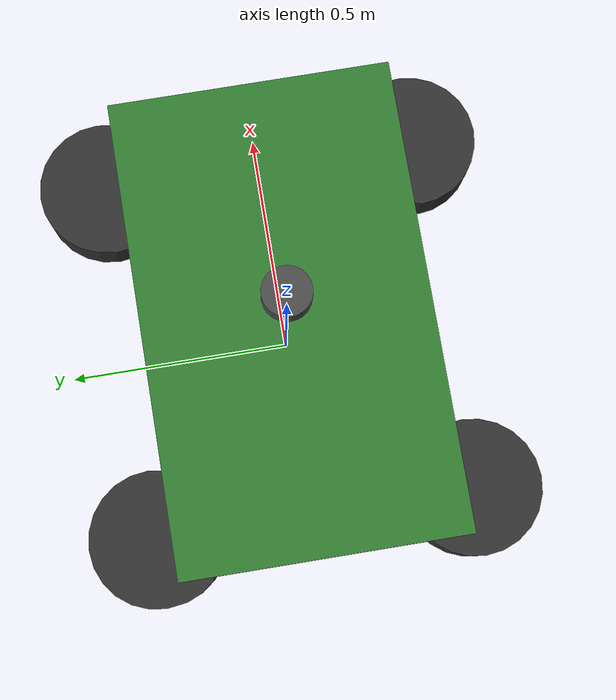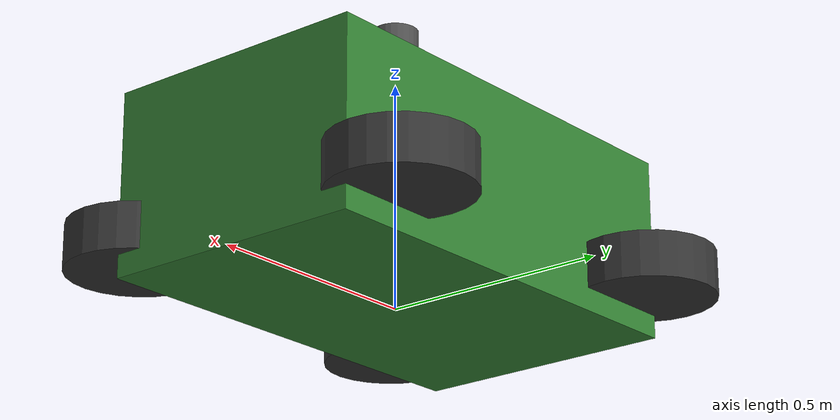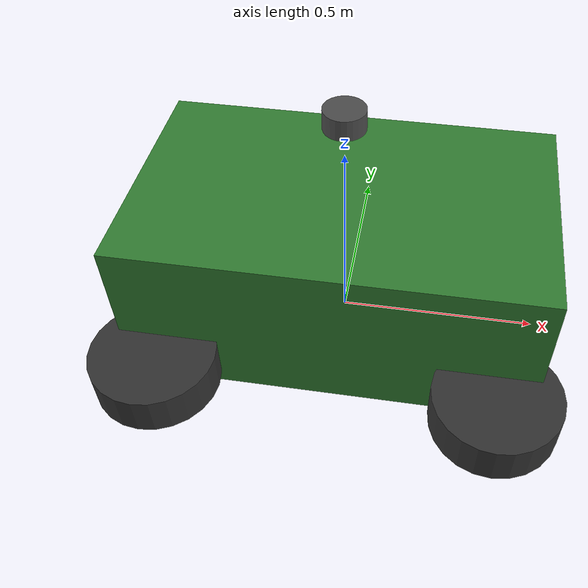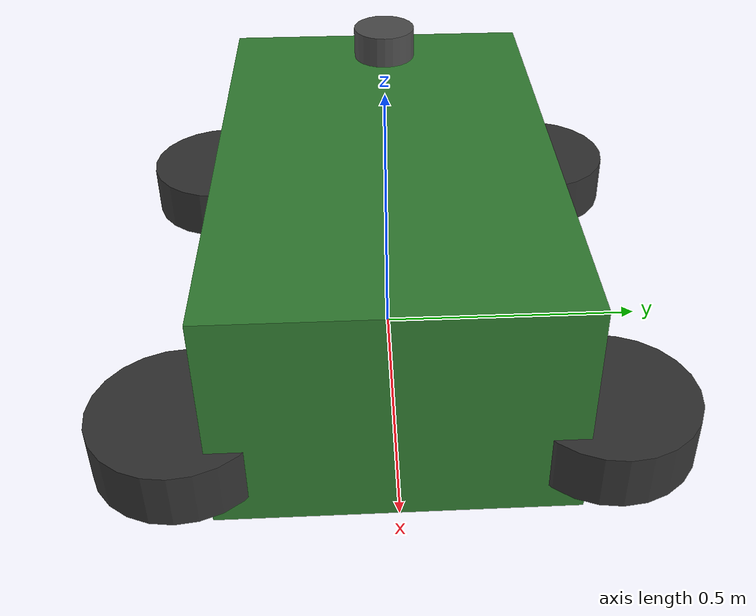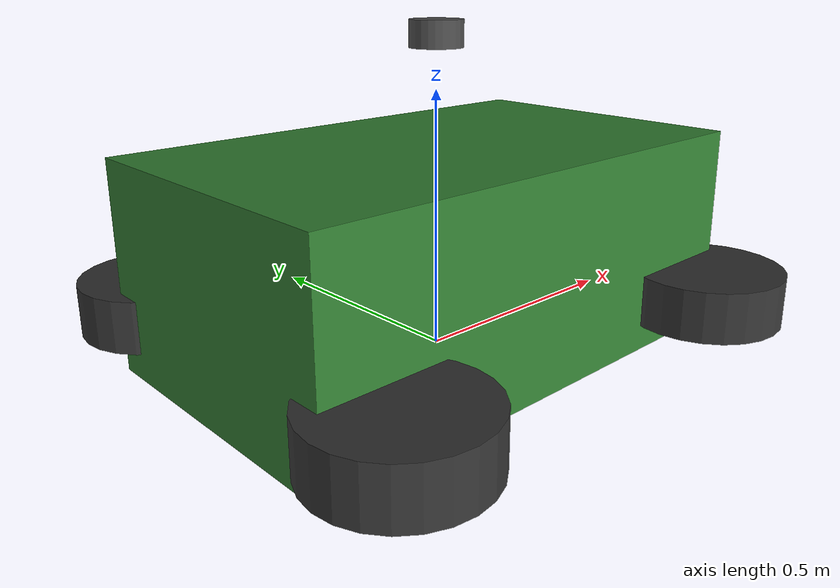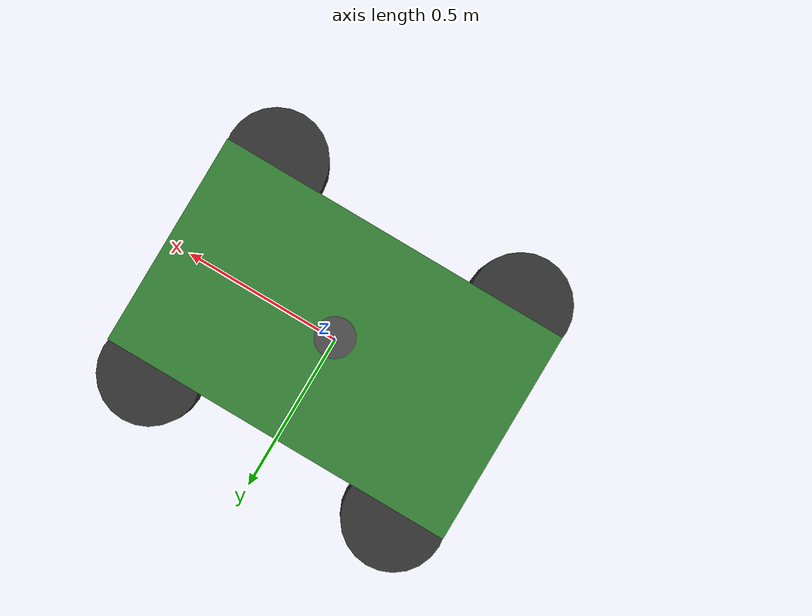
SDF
<?xml version="1.0"?>
<sdf version="1.8">
  <model name="ugv_chassis">

    <pose>0 0 0.2 0 0 0</pose>

    <!-- 车身 -->
    <link name="chassis">
      <inertial>
        <mass>25.0</mass>
        <inertia>
          <ixx>1.0</ixx>
          <ixy>0.0</ixy>
          <ixz>0.0</ixz>
          <iyy>1.5</iyy>
          <iyz>0.0</iyz>
          <izz>2.0</izz>
        </inertia>
      </inertial>

      <collision name="chassis_collision">
        <geometry>
          <box>
            <size>1.0 0.6 0.4</size>
          </box>
        </geometry>
      </collision>

      <visual name="chassis_visual">
        <geometry>
          <box>
            <size>1.0 0.6 0.4</size>
          </box>
        </geometry>
        <material>
          <ambient>0.1 0.3 0.1</ambient>
          <diffuse>0.2 0.5 0.2</diffuse>
          <specular>0.1 0.1 0.1</specular>
        </material>
      </visual>

      <!-- IMU 传感器 -->
      <sensor name="imu_sensor" type="imu">
        <always_on>true</always_on>
        <update_rate>100</update_rate>
        <imu>
          <angular_velocity>
            <x><noise type="GAUSSIAN"><mean>0</mean><stddev>0.001</stddev></noise></x>
            <y><noise type="GAUSSIAN"><mean>0</mean><stddev>0.001</stddev></noise></y>
            <z><noise type="GAUSSIAN"><mean>0</mean><stddev>0.001</stddev></noise></z>
          </angular_velocity>
          <linear_acceleration>
            <x><noise type="GAUSSIAN"><mean>0</mean><stddev>0.01</stddev></noise></x>
            <y><noise type="GAUSSIAN"><mean>0</mean><stddev>0.01</stddev></noise></y>
            <z><noise type="GAUSSIAN"><mean>0</mean><stddev>0.01</stddev></noise></z>
          </linear_acceleration>
        </imu>
      </sensor>
    </link>

    <!-- 左前轮 -->
    <link name="wheel_fl">
      <pose>0.4 0.35 -0.1 0 0 0</pose>
      <inertial>
        <mass>1.5</mass>
        <inertia>
          <ixx>0.01</ixx><ixy>0</ixy><ixz>0</ixz>
          <iyy>0.01</iyy><iyz>0</iyz>
          <izz>0.02</izz>
        </inertia>
      </inertial>
      <collision name="wheel_fl_collision">
        <geometry>
          <cylinder>
            <radius>0.15</radius>
            <length>0.1</length>
          </cylinder>
        </geometry>
      </collision>
      <visual name="wheel_fl_visual">
        <geometry>
          <cylinder>
            <radius>0.15</radius>
            <length>0.1</length>
          </cylinder>
        </geometry>
        <material>
          <ambient>0.1 0.1 0.1</ambient>
          <diffuse>0.2 0.2 0.2</diffuse>
        </material>
      </visual>
    </link>

    <!-- 左前轮关节 (旋转) -->
    <joint name="wheel_fl_joint" type="revolute">
      <parent>chassis</parent>
      <child>wheel_fl</child>
      <axis>
        <xyz>0 1 0</xyz>
      </axis>
    </joint>

    <!-- 右前轮 -->
    <link name="wheel_fr">
      <pose>0.4 -0.35 -0.1 0 0 0</pose>
      <inertial>
        <mass>1.5</mass>
        <inertia>
          <ixx>0.01</ixx><ixy>0</ixy><ixz>0</ixz>
          <iyy>0.01</iyy><iyz>0</iyz>
          <izz>0.02</izz>
        </inertia>
      </inertial>
      <collision name="wheel_fr_collision">
        <geometry>
          <cylinder>
            <radius>0.15</radius>
            <length>0.1</length>
          </cylinder>
        </geometry>
      </collision>
      <visual name="wheel_fr_visual">
        <geometry>
          <cylinder>
            <radius>0.15</radius>
            <length>0.1</length>
          </cylinder>
        </geometry>
        <material>
          <ambient>0.1 0.1 0.1</ambient>
          <diffuse>0.2 0.2 0.2</diffuse>
        </material>
      </visual>
    </link>

    <joint name="wheel_fr_joint" type="revolute">
      <parent>chassis</parent>
      <child>wheel_fr</child>
      <axis>
        <xyz>0 1 0</xyz>
      </axis>
    </joint>

    <!-- 左后轮 -->
    <link name="wheel_rl">
      <pose>-0.4 0.35 -0.1 0 0 0</pose>
      <inertial>
        <mass>1.5</mass>
        <inertia>
          <ixx>0.01</ixx><ixy>0</ixy><ixz>0</ixz>
          <iyy>0.01</iyy><iyz>0</iyz>
          <izz>0.02</izz>
        </inertia>
      </inertial>
      <collision name="wheel_rl_collision">
        <geometry>
          <cylinder>
            <radius>0.15</radius>
            <length>0.1</length>
          </cylinder>
        </geometry>
      </collision>
      <visual name="wheel_rl_visual">
        <geometry>
          <cylinder>
            <radius>0.15</radius>
            <length>0.1</length>
          </cylinder>
        </geometry>
        <material>
          <ambient>0.1 0.1 0.1</ambient>
          <diffuse>0.2 0.2 0.2</diffuse>
        </material>
      </visual>
    </link>

    <joint name="wheel_rl_joint" type="revolute">
      <parent>chassis</parent>
      <child>wheel_rl</child>
      <axis>
        <xyz>0 1 0</xyz>
      </axis>
    </joint>

    <!-- 右后轮 -->
    <link name="wheel_rr">
      <pose>-0.4 -0.35 -0.1 0 0 0</pose>
      <inertial>
        <mass>1.5</mass>
        <inertia>
          <ixx>0.01</ixx><ixy>0</ixy><ixz>0</ixz>
          <iyy>0.01</iyy><iyz>0</iyz>
          <izz>0.02</izz>
        </inertia>
      </inertial>
      <collision name="wheel_rr_collision">
        <geometry>
          <cylinder>
            <radius>0.15</radius>
            <length>0.1</length>
          </cylinder>
        </geometry>
      </collision>
      <visual name="wheel_rr_visual">
        <geometry>
          <cylinder>
            <radius>0.15</radius>
            <length>0.1</length>
          </cylinder>
        </geometry>
        <material>
          <ambient>0.1 0.1 0.1</ambient>
          <diffuse>0.2 0.2 0.2</diffuse>
        </material>
      </visual>
    </link>

    <joint name="wheel_rr_joint" type="revolute">
      <parent>chassis</parent>
      <child>wheel_rr</child>
      <axis>
        <xyz>0 1 0</xyz>
      </axis>
    </joint>

    <!-- LiDAR 支架 -->
    <link name="lidar_mount">
      <pose>0 0 0.4 0 0 0</pose>
      <collision name="lidar_mount_collision">
        <geometry>
          <cylinder>
            <radius>0.05</radius>
            <length>0.05</length>
          </cylinder>
        </geometry>
      </collision>
      <visual name="lidar_mount_visual">
        <geometry>
          <cylinder>
            <radius>0.05</radius>
            <length>0.05</length>
          </cylinder>
        </geometry>
        <material>
          <ambient>0.1 0.1 0.1</ambient>
          <diffuse>0.3 0.3 0.3</diffuse>
        </material>
      </visual>
    </link>

    <joint name="lidar_mount_joint" type="fixed">
      <parent>chassis</parent>
      <child>lidar_mount</child>
    </joint>

  </model>
</sdf>
